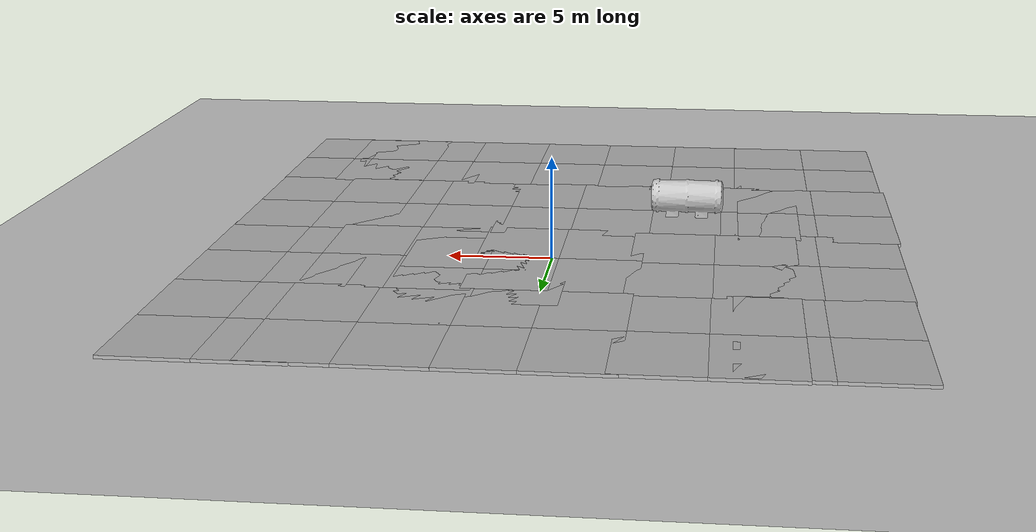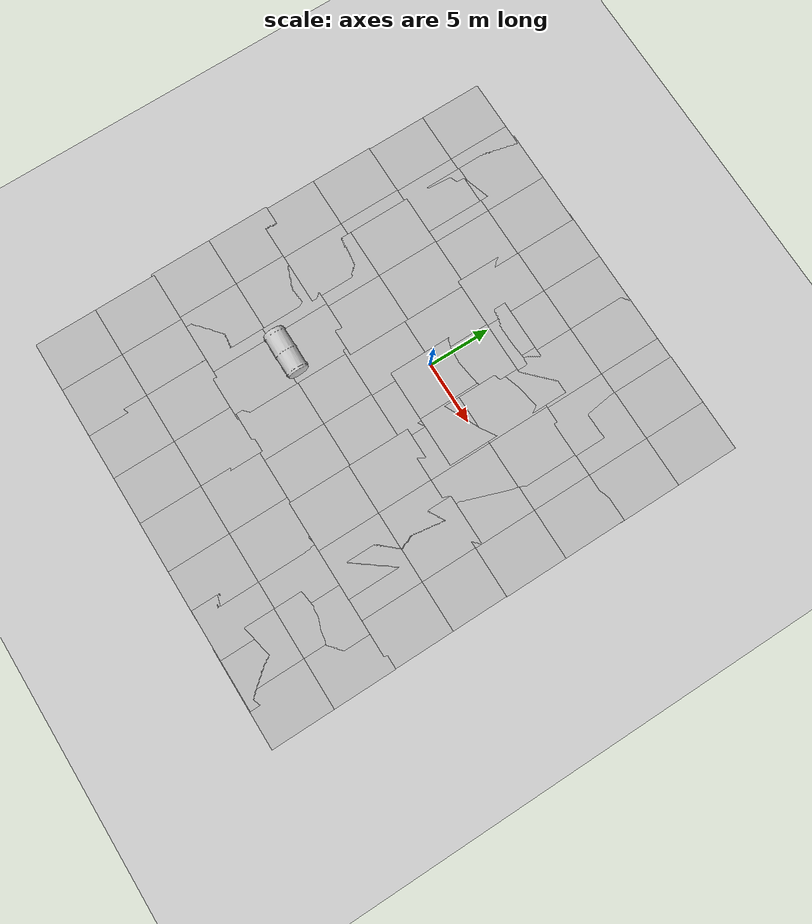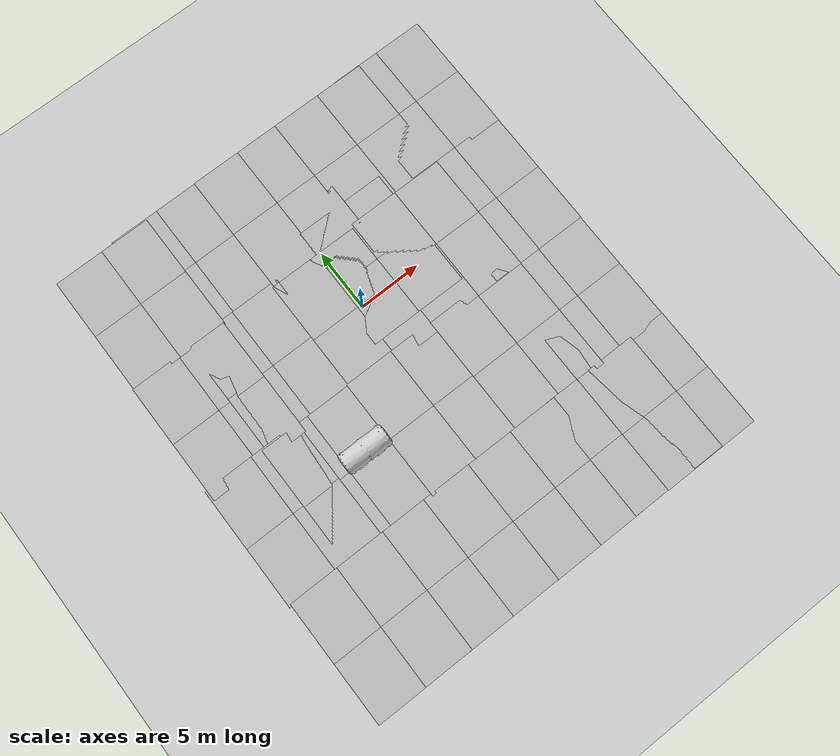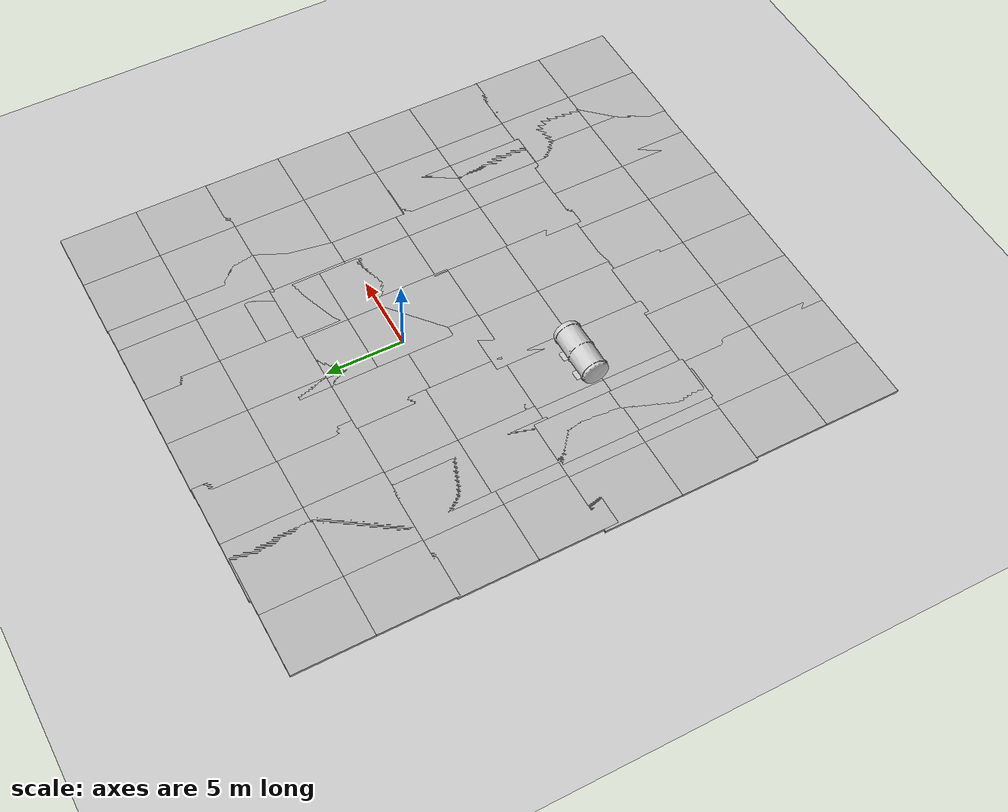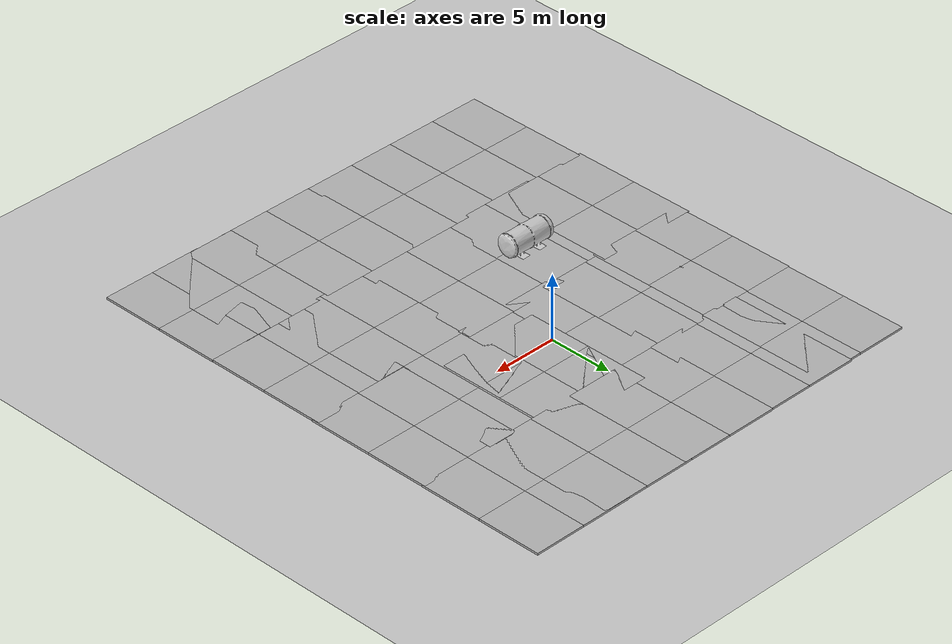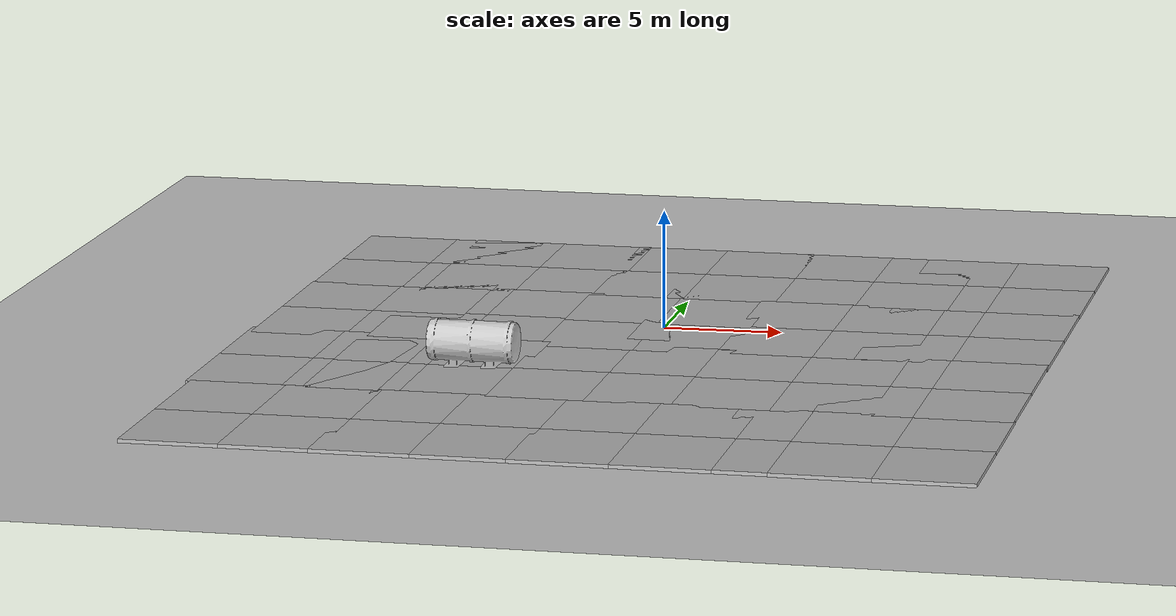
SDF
<sdf version="1.7">
 <world name="default">
  <light name="sun" type="directional">
   <pose>0 0 10 0 -0 0</pose>
   <diffuse>0.8 0.8 0.8 1</diffuse>
   <specular>0.2 0.2 0.2 1</specular>
   <attenuation>
    <range>1000</range>
    <constant>0.9</constant>
    <linear>0.01</linear>
    <quadratic>0.001</quadratic>
   </attenuation>
   <direction>-0.5 0.1 -0.9</direction>
   <spot><inner_angle>0</inner_angle><outer_angle>0</outer_angle><falloff>0</falloff></spot>
  </light>
  <model name="ground_plane">
   <static>1</static>
   <link name="link">
    <collision name="collision">
     <geometry><plane><normal>0 0 1</normal><size>100 100</size></plane></geometry>
     <surface>
      <contact><collide_bitmask>65535</collide_bitmask></contact>
      <friction><ode><mu>100</mu><mu2>50</mu2></ode></friction>
     </surface>
    </collision>
    <visual name="visual">
     <cast_shadows>0</cast_shadows>
     <geometry><plane><normal>0 0 1</normal><size>100 100</size></plane></geometry>
     <material>
      <script><uri>file://media/materials/scripts/gazebo.material</uri><name>Gazebo/Grey</name></script>
     </material>
    </visual>
   </link>
  </model>
  <gravity>0 0 -9.8</gravity>
  <magnetic_field>6e-06 2.3e-05 -4.2e-05</magnetic_field>
  <atmosphere type="adiabatic"/>
  <physics type="ode">
   <max_step_size>0.001</max_step_size>
   <real_time_factor>1</real_time_factor>
   <real_time_update_rate>1000</real_time_update_rate>
  </physics>
  <scene><ambient>0.4 0.4 0.4 1</ambient><background>0.7 0.7 0.7 1</background><shadows>1</shadows></scene>
  <spherical_coordinates>
   <surface_model>EARTH_WGS84</surface_model>
   <latitude_deg>0</latitude_deg>
   <longitude_deg>0</longitude_deg>
   <elevation>0</elevation>
   <heading_deg>0</heading_deg>
  </spherical_coordinates>
  <model name="mud_box_0_clone">
   <static>1</static>
   <link name="link">
    <collision name="collision"><geometry><box><size>8 10 0.2</size></box></geometry></collision>
    <visual name="visual_1">
     <pose>-2 2.5 0 0 -0 0</pose>
     <cast_shadows>0</cast_shadows>
     <geometry><box><size>4 5 0.2</size></box></geometry>
     <material>
      <script>
       <uri>model://mud_box/materials/scripts</uri>
       <uri>model://mud_box/materials/textures</uri>
       <name>vrc/mud</name>
      </script>
     </material>
    </visual>
    <visual name="visual_2">
     <pose>2 2.5 0 0 -0 0</pose>
     <cast_shadows>0</cast_shadows>
     <geometry><box><size>4 5 0.2</size></box></geometry>
     <material>
      <script>
       <uri>model://mud_box/materials/scripts</uri>
       <uri>model://mud_box/materials/textures</uri>
       <name>vrc/mud</name>
      </script>
     </material>
    </visual>
    <visual name="visual_3">
     <pose>2 -2.5 0 0 -0 0</pose>
     <cast_shadows>0</cast_shadows>
     <geometry><box><size>4 5 0.2</size></box></geometry>
     <material>
      <script>
       <uri>model://mud_box/materials/scripts</uri>
       <uri>model://mud_box/materials/textures</uri>
       <name>vrc/mud</name>
      </script>
     </material>
    </visual>
    <visual name="visual_4">
     <pose>-2 -2.5 0 0 -0 0</pose>
     <cast_shadows>0</cast_shadows>
     <geometry><box><size>4 5 0.2</size></box></geometry>
     <material>
      <script>
       <uri>model://mud_box/materials/scripts</uri>
       <uri>model://mud_box/materials/textures</uri>
       <name>vrc/mud</name>
      </script>
     </material>
    </visual>
   </link>
   <pose>7.23243 10.1706 0 0 -0 0</pose>
  </model>
  <model name="mud_box_0_clone_1">
   <static>1</static>
   <link name="link">
    <collision name="collision"><geometry><box><size>8 10 0.2</size></box></geometry></collision>
    <visual name="visual_1">
     <pose>-2 2.5 0 0 -0 0</pose>
     <cast_shadows>0</cast_shadows>
     <geometry><box><size>4 5 0.2</size></box></geometry>
     <material>
      <script>
       <uri>model://mud_box/materials/scripts</uri>
       <uri>model://mud_box/materials/textures</uri>
       <name>vrc/mud</name>
      </script>
     </material>
    </visual>
    <visual name="visual_2">
     <pose>2 2.5 0 0 -0 0</pose>
     <cast_shadows>0</cast_shadows>
     <geometry><box><size>4 5 0.2</size></box></geometry>
     <material>
      <script>
       <uri>model://mud_box/materials/scripts</uri>
       <uri>model://mud_box/materials/textures</uri>
       <name>vrc/mud</name>
      </script>
     </material>
    </visual>
    <visual name="visual_3">
     <pose>2 -2.5 0 0 -0 0</pose>
     <cast_shadows>0</cast_shadows>
     <geometry><box><size>4 5 0.2</size></box></geometry>
     <material>
      <script>
       <uri>model://mud_box/materials/scripts</uri>
       <uri>model://mud_box/materials/textures</uri>
       <name>vrc/mud</name>
      </script>
     </material>
    </visual>
    <visual name="visual_4">
     <pose>-2 -2.5 0 0 -0 0</pose>
     <cast_shadows>0</cast_shadows>
     <geometry><box><size>4 5 0.2</size></box></geometry>
     <material>
      <script>
       <uri>model://mud_box/materials/scripts</uri>
       <uri>model://mud_box/materials/textures</uri>
       <name>vrc/mud</name>
      </script>
     </material>
    </visual>
   </link>
   <pose>7.10984 -8.97879 0 0 -0 0</pose>
  </model>
  <model name="mud_box_0_clone_5">
   <static>1</static>
   <link name="link">
    <collision name="collision"><geometry><box><size>8 10 0.2</size></box></geometry></collision>
    <visual name="visual_1">
     <pose>-2 2.5 0 0 -0 0</pose>
     <cast_shadows>0</cast_shadows>
     <geometry><box><size>4 5 0.2</size></box></geometry>
     <material>
      <script>
       <uri>model://mud_box/materials/scripts</uri>
       <uri>model://mud_box/materials/textures</uri>
       <name>vrc/mud</name>
      </script>
     </material>
    </visual>
    <visual name="visual_2">
     <pose>2 2.5 0 0 -0 0</pose>
     <cast_shadows>0</cast_shadows>
     <geometry><box><size>4 5 0.2</size></box></geometry>
     <material>
      <script>
       <uri>model://mud_box/materials/scripts</uri>
       <uri>model://mud_box/materials/textures</uri>
       <name>vrc/mud</name>
      </script>
     </material>
    </visual>
    <visual name="visual_3">
     <pose>2 -2.5 0 0 -0 0</pose>
     <cast_shadows>0</cast_shadows>
     <geometry><box><size>4 5 0.2</size></box></geometry>
     <material>
      <script>
       <uri>model://mud_box/materials/scripts</uri>
       <uri>model://mud_box/materials/textures</uri>
       <name>vrc/mud</name>
      </script>
     </material>
    </visual>
    <visual name="visual_4">
     <pose>-2 -2.5 0 0 -0 0</pose>
     <cast_shadows>0</cast_shadows>
     <geometry><box><size>4 5 0.2</size></box></geometry>
     <material>
      <script>
       <uri>model://mud_box/materials/scripts</uri>
       <uri>model://mud_box/materials/textures</uri>
       <name>vrc/mud</name>
      </script>
     </material>
    </visual>
   </link>
   <pose>-7.69602 10.1213 0 0 -0 0</pose>
  </model>
  <model name="mud_box_0_clone_1_clone">
   <static>1</static>
   <link name="link">
    <collision name="collision"><geometry><box><size>8 10 0.2</size></box></geometry></collision>
    <visual name="visual_1">
     <pose>-2 2.5 0 0 -0 0</pose>
     <cast_shadows>0</cast_shadows>
     <geometry><box><size>4 5 0.2</size></box></geometry>
     <material>
      <script>
       <uri>model://mud_box/materials/scripts</uri>
       <uri>model://mud_box/materials/textures</uri>
       <name>vrc/mud</name>
      </script>
     </material>
    </visual>
    <visual name="visual_2">
     <pose>2 2.5 0 0 -0 0</pose>
     <cast_shadows>0</cast_shadows>
     <geometry><box><size>4 5 0.2</size></box></geometry>
     <material>
      <script>
       <uri>model://mud_box/materials/scripts</uri>
       <uri>model://mud_box/materials/textures</uri>
       <name>vrc/mud</name>
      </script>
     </material>
    </visual>
    <visual name="visual_3">
     <pose>2 -2.5 0 0 -0 0</pose>
     <cast_shadows>0</cast_shadows>
     <geometry><box><size>4 5 0.2</size></box></geometry>
     <material>
      <script>
       <uri>model://mud_box/materials/scripts</uri>
       <uri>model://mud_box/materials/textures</uri>
       <name>vrc/mud</name>
      </script>
     </material>
    </visual>
    <visual name="visual_4">
     <pose>-2 -2.5 0 0 -0 0</pose>
     <cast_shadows>0</cast_shadows>
     <geometry><box><size>4 5 0.2</size></box></geometry>
     <material>
      <script>
       <uri>model://mud_box/materials/scripts</uri>
       <uri>model://mud_box/materials/textures</uri>
       <name>vrc/mud</name>
      </script>
     </material>
    </visual>
   </link>
   <pose>-0.352292 0.173494 0 0 -0 0</pose>
  </model>
  <model name="mud_box_0_clone_1_clone_0_clone">
   <static>1</static>
   <link name="link">
    <collision name="collision"><geometry><box><size>8 10 0.2</size></box></geometry></collision>
    <visual name="visual_1">
     <pose>-2 2.5 0 0 -0 0</pose>
     <cast_shadows>0</cast_shadows>
     <geometry><box><size>4 5 0.2</size></box></geometry>
     <material>
      <script>
       <uri>model://mud_box/materials/scripts</uri>
       <uri>model://mud_box/materials/textures</uri>
       <name>vrc/mud</name>
      </script>
     </material>
    </visual>
    <visual name="visual_2">
     <pose>2 2.5 0 0 -0 0</pose>
     <cast_shadows>0</cast_shadows>
     <geometry><box><size>4 5 0.2</size></box></geometry>
     <material>
      <script>
       <uri>model://mud_box/materials/scripts</uri>
       <uri>model://mud_box/materials/textures</uri>
       <name>vrc/mud</name>
      </script>
     </material>
    </visual>
    <visual name="visual_3">
     <pose>2 -2.5 0 0 -0 0</pose>
     <cast_shadows>0</cast_shadows>
     <geometry><box><size>4 5 0.2</size></box></geometry>
     <material>
      <script>
       <uri>model://mud_box/materials/scripts</uri>
       <uri>model://mud_box/materials/textures</uri>
       <name>vrc/mud</name>
      </script>
     </material>
    </visual>
    <visual name="visual_4">
     <pose>-2 -2.5 0 0 -0 0</pose>
     <cast_shadows>0</cast_shadows>
     <geometry><box><size>4 5 0.2</size></box></geometry>
     <material>
      <script>
       <uri>model://mud_box/materials/scripts</uri>
       <uri>model://mud_box/materials/textures</uri>
       <name>vrc/mud</name>
      </script>
     </material>
    </visual>
   </link>
   <pose>7.13421 0.443991 0 0 -0 0</pose>
  </model>
  <model name="mud_box_0_clone_1_clone_1">
   <static>1</static>
   <link name="link">
    <collision name="collision"><geometry><box><size>8 10 0.2</size></box></geometry></collision>
    <visual name="visual_1">
     <pose>-2 2.5 0 0 -0 0</pose>
     <cast_shadows>0</cast_shadows>
     <geometry><box><size>4 5 0.2</size></box></geometry>
     <material>
      <script>
       <uri>model://mud_box/materials/scripts</uri>
       <uri>model://mud_box/materials/textures</uri>
       <name>vrc/mud</name>
      </script>
     </material>
    </visual>
    <visual name="visual_2">
     <pose>2 2.5 0 0 -0 0</pose>
     <cast_shadows>0</cast_shadows>
     <geometry><box><size>4 5 0.2</size></box></geometry>
     <material>
      <script>
       <uri>model://mud_box/materials/scripts</uri>
       <uri>model://mud_box/materials/textures</uri>
       <name>vrc/mud</name>
      </script>
     </material>
    </visual>
    <visual name="visual_3">
     <pose>2 -2.5 0 0 -0 0</pose>
     <cast_shadows>0</cast_shadows>
     <geometry><box><size>4 5 0.2</size></box></geometry>
     <material>
      <script>
       <uri>model://mud_box/materials/scripts</uri>
       <uri>model://mud_box/materials/textures</uri>
       <name>vrc/mud</name>
      </script>
     </material>
    </visual>
    <visual name="visual_4">
     <pose>-2 -2.5 0 0 -0 0</pose>
     <cast_shadows>0</cast_shadows>
     <geometry><box><size>4 5 0.2</size></box></geometry>
     <material>
      <script>
       <uri>model://mud_box/materials/scripts</uri>
       <uri>model://mud_box/materials/textures</uri>
       <name>vrc/mud</name>
      </script>
     </material>
    </visual>
   </link>
   <pose>-0.447098 -8.882 0 0 -0 0</pose>
  </model>
  <model name="mud_box_0_clone_1_clone_2">
   <static>1</static>
   <link name="link">
    <collision name="collision"><geometry><box><size>8 10 0.2</size></box></geometry></collision>
    <visual name="visual_1">
     <pose>-2 2.5 0 0 -0 0</pose>
     <cast_shadows>0</cast_shadows>
     <geometry><box><size>4 5 0.2</size></box></geometry>
     <material>
      <script>
       <uri>model://mud_box/materials/scripts</uri>
       <uri>model://mud_box/materials/textures</uri>
       <name>vrc/mud</name>
      </script>
     </material>
    </visual>
    <visual name="visual_2">
     <pose>2 2.5 0 0 -0 0</pose>
     <cast_shadows>0</cast_shadows>
     <geometry><box><size>4 5 0.2</size></box></geometry>
     <material>
      <script>
       <uri>model://mud_box/materials/scripts</uri>
       <uri>model://mud_box/materials/textures</uri>
       <name>vrc/mud</name>
      </script>
     </material>
    </visual>
    <visual name="visual_3">
     <pose>2 -2.5 0 0 -0 0</pose>
     <cast_shadows>0</cast_shadows>
     <geometry><box><size>4 5 0.2</size></box></geometry>
     <material>
      <script>
       <uri>model://mud_box/materials/scripts</uri>
       <uri>model://mud_box/materials/textures</uri>
       <name>vrc/mud</name>
      </script>
     </material>
    </visual>
    <visual name="visual_4">
     <pose>-2 -2.5 0 0 -0 0</pose>
     <cast_shadows>0</cast_shadows>
     <geometry><box><size>4 5 0.2</size></box></geometry>
     <material>
      <script>
       <uri>model://mud_box/materials/scripts</uri>
       <uri>model://mud_box/materials/textures</uri>
       <name>vrc/mud</name>
      </script>
     </material>
    </visual>
   </link>
   <pose>-8.01153 -8.98007 0 0 -0 0</pose>
  </model>
  <model name="mud_box_0_clone_5_clone">
   <static>1</static>
   <link name="link">
    <collision name="collision"><geometry><box><size>8 10 0.2</size></box></geometry></collision>
    <visual name="visual_1">
     <pose>-2 2.5 0 0 -0 0</pose>
     <cast_shadows>0</cast_shadows>
     <geometry><box><size>4 5 0.2</size></box></geometry>
     <material>
      <script>
       <uri>model://mud_box/materials/scripts</uri>
       <uri>model://mud_box/materials/textures</uri>
       <name>vrc/mud</name>
      </script>
     </material>
    </visual>
    <visual name="visual_2">
     <pose>2 2.5 0 0 -0 0</pose>
     <cast_shadows>0</cast_shadows>
     <geometry><box><size>4 5 0.2</size></box></geometry>
     <material>
      <script>
       <uri>model://mud_box/materials/scripts</uri>
       <uri>model://mud_box/materials/textures</uri>
       <name>vrc/mud</name>
      </script>
     </material>
    </visual>
    <visual name="visual_3">
     <pose>2 -2.5 0 0 -0 0</pose>
     <cast_shadows>0</cast_shadows>
     <geometry><box><size>4 5 0.2</size></box></geometry>
     <material>
      <script>
       <uri>model://mud_box/materials/scripts</uri>
       <uri>model://mud_box/materials/textures</uri>
       <name>vrc/mud</name>
      </script>
     </material>
    </visual>
    <visual name="visual_4">
     <pose>-2 -2.5 0 0 -0 0</pose>
     <cast_shadows>0</cast_shadows>
     <geometry><box><size>4 5 0.2</size></box></geometry>
     <material>
      <script>
       <uri>model://mud_box/materials/scripts</uri>
       <uri>model://mud_box/materials/textures</uri>
       <name>vrc/mud</name>
      </script>
     </material>
    </visual>
   </link>
   <pose>-0.238477 10.1628 0 0 -0 0</pose>
  </model>
  <model name="mud_box_0_clone_5_clone_0">
   <static>1</static>
   <link name="link">
    <collision name="collision"><geometry><box><size>8 10 0.2</size></box></geometry></collision>
    <visual name="visual_1">
     <pose>-2 2.5 0 0 -0 0</pose>
     <cast_shadows>0</cast_shadows>
     <geometry><box><size>4 5 0.2</size></box></geometry>
     <material>
      <script>
       <uri>model://mud_box/materials/scripts</uri>
       <uri>model://mud_box/materials/textures</uri>
       <name>vrc/mud</name>
      </script>
     </material>
    </visual>
    <visual name="visual_2">
     <pose>2 2.5 0 0 -0 0</pose>
     <cast_shadows>0</cast_shadows>
     <geometry><box><size>4 5 0.2</size></box></geometry>
     <material>
      <script>
       <uri>model://mud_box/materials/scripts</uri>
       <uri>model://mud_box/materials/textures</uri>
       <name>vrc/mud</name>
      </script>
     </material>
    </visual>
    <visual name="visual_3">
     <pose>2 -2.5 0 0 -0 0</pose>
     <cast_shadows>0</cast_shadows>
     <geometry><box><size>4 5 0.2</size></box></geometry>
     <material>
      <script>
       <uri>model://mud_box/materials/scripts</uri>
       <uri>model://mud_box/materials/textures</uri>
       <name>vrc/mud</name>
      </script>
     </material>
    </visual>
    <visual name="visual_4">
     <pose>-2 -2.5 0 0 -0 0</pose>
     <cast_shadows>0</cast_shadows>
     <geometry><box><size>4 5 0.2</size></box></geometry>
     <material>
      <script>
       <uri>model://mud_box/materials/scripts</uri>
       <uri>model://mud_box/materials/textures</uri>
       <name>vrc/mud</name>
      </script>
     </material>
    </visual>
   </link>
   <pose>-7.75937 0.459731 0 0 -0 0</pose>
  </model>
  <model name="mud_box_0_clone_5_clone_1">
   <static>1</static>
   <link name="link">
    <collision name="collision"><geometry><box><size>8 10 0.2</size></box></geometry></collision>
    <visual name="visual_1">
     <pose>-2 2.5 0 0 -0 0</pose>
     <cast_shadows>0</cast_shadows>
     <geometry><box><size>4 5 0.2</size></box></geometry>
     <material>
      <script>
       <uri>model://mud_box/materials/scripts</uri>
       <uri>model://mud_box/materials/textures</uri>
       <name>vrc/mud</name>
      </script>
     </material>
    </visual>
    <visual name="visual_2">
     <pose>2 2.5 0 0 -0 0</pose>
     <cast_shadows>0</cast_shadows>
     <geometry><box><size>4 5 0.2</size></box></geometry>
     <material>
      <script>
       <uri>model://mud_box/materials/scripts</uri>
       <uri>model://mud_box/materials/textures</uri>
       <name>vrc/mud</name>
      </script>
     </material>
    </visual>
    <visual name="visual_3">
     <pose>2 -2.5 0 0 -0 0</pose>
     <cast_shadows>0</cast_shadows>
     <geometry><box><size>4 5 0.2</size></box></geometry>
     <material>
      <script>
       <uri>model://mud_box/materials/scripts</uri>
       <uri>model://mud_box/materials/textures</uri>
       <name>vrc/mud</name>
      </script>
     </material>
    </visual>
    <visual name="visual_4">
     <pose>-2 -2.5 0 0 -0 0</pose>
     <cast_shadows>0</cast_shadows>
     <geometry><box><size>4 5 0.2</size></box></geometry>
     <material>
      <script>
       <uri>model://mud_box/materials/scripts</uri>
       <uri>model://mud_box/materials/textures</uri>
       <name>vrc/mud</name>
      </script>
     </material>
    </visual>
   </link>
   <pose>2.9865 2.19101 0 0 -0 0</pose>
  </model>
  <model name="mud_box_0_clone_1_clone_2_clone">
   <static>1</static>
   <link name="link">
    <collision name="collision"><geometry><box><size>8 10 0.2</size></box></geometry></collision>
    <visual name="visual_1">
     <pose>-2 2.5 0 0 -0 0</pose>
     <cast_shadows>0</cast_shadows>
     <geometry><box><size>4 5 0.2</size></box></geometry>
     <material>
      <script>
       <uri>model://mud_box/materials/scripts</uri>
       <uri>model://mud_box/materials/textures</uri>
       <name>vrc/mud</name>
      </script>
     </material>
    </visual>
    <visual name="visual_2">
     <pose>2 2.5 0 0 -0 0</pose>
     <cast_shadows>0</cast_shadows>
     <geometry><box><size>4 5 0.2</size></box></geometry>
     <material>
      <script>
       <uri>model://mud_box/materials/scripts</uri>
       <uri>model://mud_box/materials/textures</uri>
       <name>vrc/mud</name>
      </script>
     </material>
    </visual>
    <visual name="visual_3">
     <pose>2 -2.5 0 0 -0 0</pose>
     <cast_shadows>0</cast_shadows>
     <geometry><box><size>4 5 0.2</size></box></geometry>
     <material>
      <script>
       <uri>model://mud_box/materials/scripts</uri>
       <uri>model://mud_box/materials/textures</uri>
       <name>vrc/mud</name>
      </script>
     </material>
    </visual>
    <visual name="visual_4">
     <pose>-2 -2.5 0 0 -0 0</pose>
     <cast_shadows>0</cast_shadows>
     <geometry><box><size>4 5 0.2</size></box></geometry>
     <material>
      <script>
       <uri>model://mud_box/materials/scripts</uri>
       <uri>model://mud_box/materials/textures</uri>
       <name>vrc/mud</name>
      </script>
     </material>
    </visual>
   </link>
   <pose>-12.6583 10.0258 0 0 -0 0</pose>
  </model>
  <model name="mud_box_0_clone_1_clone_2_clone_0">
   <static>1</static>
   <link name="link">
    <collision name="collision"><geometry><box><size>8 10 0.2</size></box></geometry></collision>
    <visual name="visual_1">
     <pose>-2 2.5 0 0 -0 0</pose>
     <cast_shadows>0</cast_shadows>
     <geometry><box><size>4 5 0.2</size></box></geometry>
     <material>
      <script>
       <uri>model://mud_box/materials/scripts</uri>
       <uri>model://mud_box/materials/textures</uri>
       <name>vrc/mud</name>
      </script>
     </material>
    </visual>
    <visual name="visual_2">
     <pose>2 2.5 0 0 -0 0</pose>
     <cast_shadows>0</cast_shadows>
     <geometry><box><size>4 5 0.2</size></box></geometry>
     <material>
      <script>
       <uri>model://mud_box/materials/scripts</uri>
       <uri>model://mud_box/materials/textures</uri>
       <name>vrc/mud</name>
      </script>
     </material>
    </visual>
    <visual name="visual_3">
     <pose>2 -2.5 0 0 -0 0</pose>
     <cast_shadows>0</cast_shadows>
     <geometry><box><size>4 5 0.2</size></box></geometry>
     <material>
      <script>
       <uri>model://mud_box/materials/scripts</uri>
       <uri>model://mud_box/materials/textures</uri>
       <name>vrc/mud</name>
      </script>
     </material>
    </visual>
    <visual name="visual_4">
     <pose>-2 -2.5 0 0 -0 0</pose>
     <cast_shadows>0</cast_shadows>
     <geometry><box><size>4 5 0.2</size></box></geometry>
     <material>
      <script>
       <uri>model://mud_box/materials/scripts</uri>
       <uri>model://mud_box/materials/textures</uri>
       <name>vrc/mud</name>
      </script>
     </material>
    </visual>
   </link>
   <pose>-12.7278 0.220022 0 0 -0 0</pose>
  </model>
  <model name="mud_box_0_clone_1_clone_2_clone_1">
   <static>1</static>
   <link name="link">
    <collision name="collision"><geometry><box><size>8 10 0.2</size></box></geometry></collision>
    <visual name="visual_1">
     <pose>-2 2.5 0 0 -0 0</pose>
     <cast_shadows>0</cast_shadows>
     <geometry><box><size>4 5 0.2</size></box></geometry>
     <material>
      <script>
       <uri>model://mud_box/materials/scripts</uri>
       <uri>model://mud_box/materials/textures</uri>
       <name>vrc/mud</name>
      </script>
     </material>
    </visual>
    <visual name="visual_2">
     <pose>2 2.5 0 0 -0 0</pose>
     <cast_shadows>0</cast_shadows>
     <geometry><box><size>4 5 0.2</size></box></geometry>
     <material>
      <script>
       <uri>model://mud_box/materials/scripts</uri>
       <uri>model://mud_box/materials/textures</uri>
       <name>vrc/mud</name>
      </script>
     </material>
    </visual>
    <visual name="visual_3">
     <pose>2 -2.5 0 0 -0 0</pose>
     <cast_shadows>0</cast_shadows>
     <geometry><box><size>4 5 0.2</size></box></geometry>
     <material>
      <script>
       <uri>model://mud_box/materials/scripts</uri>
       <uri>model://mud_box/materials/textures</uri>
       <name>vrc/mud</name>
      </script>
     </material>
    </visual>
    <visual name="visual_4">
     <pose>-2 -2.5 0 0 -0 0</pose>
     <cast_shadows>0</cast_shadows>
     <geometry><box><size>4 5 0.2</size></box></geometry>
     <material>
      <script>
       <uri>model://mud_box/materials/scripts</uri>
       <uri>model://mud_box/materials/textures</uri>
       <name>vrc/mud</name>
      </script>
     </material>
    </visual>
   </link>
   <pose>-12.8843 -8.84727 0 0 -0 0</pose>
  </model>
  <model name="mud_box_0_clone_1_clone_2_clone_2">
   <static>1</static>
   <link name="link">
    <collision name="collision"><geometry><box><size>8 10 0.2</size></box></geometry></collision>
    <visual name="visual_1">
     <pose>-2 2.5 0 0 -0 0</pose>
     <cast_shadows>0</cast_shadows>
     <geometry><box><size>4 5 0.2</size></box></geometry>
     <material>
      <script>
       <uri>model://mud_box/materials/scripts</uri>
       <uri>model://mud_box/materials/textures</uri>
       <name>vrc/mud</name>
      </script>
     </material>
    </visual>
    <visual name="visual_2">
     <pose>2 2.5 0 0 -0 0</pose>
     <cast_shadows>0</cast_shadows>
     <geometry><box><size>4 5 0.2</size></box></geometry>
     <material>
      <script>
       <uri>model://mud_box/materials/scripts</uri>
       <uri>model://mud_box/materials/textures</uri>
       <name>vrc/mud</name>
      </script>
     </material>
    </visual>
    <visual name="visual_3">
     <pose>2 -2.5 0 0 -0 0</pose>
     <cast_shadows>0</cast_shadows>
     <geometry><box><size>4 5 0.2</size></box></geometry>
     <material>
      <script>
       <uri>model://mud_box/materials/scripts</uri>
       <uri>model://mud_box/materials/textures</uri>
       <name>vrc/mud</name>
      </script>
     </material>
    </visual>
    <visual name="visual_4">
     <pose>-2 -2.5 0 0 -0 0</pose>
     <cast_shadows>0</cast_shadows>
     <geometry><box><size>4 5 0.2</size></box></geometry>
     <material>
      <script>
       <uri>model://mud_box/materials/scripts</uri>
       <uri>model://mud_box/materials/textures</uri>
       <name>vrc/mud</name>
      </script>
     </material>
    </visual>
   </link>
   <pose>12.8873 10.2037 0 0 -0 0</pose>
  </model>
  <model name="mud_box_0_clone_1_clone_2_clone_3">
   <static>1</static>
   <link name="link">
    <collision name="collision"><geometry><box><size>8 10 0.2</size></box></geometry></collision>
    <visual name="visual_1">
     <pose>-2 2.5 0 0 -0 0</pose>
     <cast_shadows>0</cast_shadows>
     <geometry><box><size>4 5 0.2</size></box></geometry>
     <material>
      <script>
       <uri>model://mud_box/materials/scripts</uri>
       <uri>model://mud_box/materials/textures</uri>
       <name>vrc/mud</name>
      </script>
     </material>
    </visual>
    <visual name="visual_2">
     <pose>2 2.5 0 0 -0 0</pose>
     <cast_shadows>0</cast_shadows>
     <geometry><box><size>4 5 0.2</size></box></geometry>
     <material>
      <script>
       <uri>model://mud_box/materials/scripts</uri>
       <uri>model://mud_box/materials/textures</uri>
       <name>vrc/mud</name>
      </script>
     </material>
    </visual>
    <visual name="visual_3">
     <pose>2 -2.5 0 0 -0 0</pose>
     <cast_shadows>0</cast_shadows>
     <geometry><box><size>4 5 0.2</size></box></geometry>
     <material>
      <script>
       <uri>model://mud_box/materials/scripts</uri>
       <uri>model://mud_box/materials/textures</uri>
       <name>vrc/mud</name>
      </script>
     </material>
    </visual>
    <visual name="visual_4">
     <pose>-2 -2.5 0 0 -0 0</pose>
     <cast_shadows>0</cast_shadows>
     <geometry><box><size>4 5 0.2</size></box></geometry>
     <material>
      <script>
       <uri>model://mud_box/materials/scripts</uri>
       <uri>model://mud_box/materials/textures</uri>
       <name>vrc/mud</name>
      </script>
     </material>
    </visual>
   </link>
   <pose>12.867 0.490586 0 0 -0 0</pose>
  </model>
  <model name="mud_box_0_clone_1_clone_2_clone_4">
   <static>1</static>
   <link name="link">
    <collision name="collision"><geometry><box><size>8 10 0.2</size></box></geometry></collision>
    <visual name="visual_1">
     <pose>-2 2.5 0 0 -0 0</pose>
     <cast_shadows>0</cast_shadows>
     <geometry><box><size>4 5 0.2</size></box></geometry>
     <material>
      <script>
       <uri>model://mud_box/materials/scripts</uri>
       <uri>model://mud_box/materials/textures</uri>
       <name>vrc/mud</name>
      </script>
     </material>
    </visual>
    <visual name="visual_2">
     <pose>2 2.5 0 0 -0 0</pose>
     <cast_shadows>0</cast_shadows>
     <geometry><box><size>4 5 0.2</size></box></geometry>
     <material>
      <script>
       <uri>model://mud_box/materials/scripts</uri>
       <uri>model://mud_box/materials/textures</uri>
       <name>vrc/mud</name>
      </script>
     </material>
    </visual>
    <visual name="visual_3">
     <pose>2 -2.5 0 0 -0 0</pose>
     <cast_shadows>0</cast_shadows>
     <geometry><box><size>4 5 0.2</size></box></geometry>
     <material>
      <script>
       <uri>model://mud_box/materials/scripts</uri>
       <uri>model://mud_box/materials/textures</uri>
       <name>vrc/mud</name>
      </script>
     </material>
    </visual>
    <visual name="visual_4">
     <pose>-2 -2.5 0 0 -0 0</pose>
     <cast_shadows>0</cast_shadows>
     <geometry><box><size>4 5 0.2</size></box></geometry>
     <material>
      <script>
       <uri>model://mud_box/materials/scripts</uri>
       <uri>model://mud_box/materials/textures</uri>
       <name>vrc/mud</name>
      </script>
     </material>
    </visual>
   </link>
   <pose>12.8269 -8.96328 0 0 -0 0</pose>
  </model>
  <model name="mud_box_0_clone_1_clone_2_clone_5">
   <static>1</static>
   <link name="link">
    <collision name="collision"><geometry><box><size>8 10 0.2</size></box></geometry></collision>
    <visual name="visual_1">
     <pose>-2 2.5 0 0 -0 0</pose>
     <cast_shadows>0</cast_shadows>
     <geometry><box><size>4 5 0.2</size></box></geometry>
     <material>
      <script>
       <uri>model://mud_box/materials/scripts</uri>
       <uri>model://mud_box/materials/textures</uri>
       <name>vrc/mud</name>
      </script>
     </material>
    </visual>
    <visual name="visual_2">
     <pose>2 2.5 0 0 -0 0</pose>
     <cast_shadows>0</cast_shadows>
     <geometry><box><size>4 5 0.2</size></box></geometry>
     <material>
      <script>
       <uri>model://mud_box/materials/scripts</uri>
       <uri>model://mud_box/materials/textures</uri>
       <name>vrc/mud</name>
      </script>
     </material>
    </visual>
    <visual name="visual_3">
     <pose>2 -2.5 0 0 -0 0</pose>
     <cast_shadows>0</cast_shadows>
     <geometry><box><size>4 5 0.2</size></box></geometry>
     <material>
      <script>
       <uri>model://mud_box/materials/scripts</uri>
       <uri>model://mud_box/materials/textures</uri>
       <name>vrc/mud</name>
      </script>
     </material>
    </visual>
    <visual name="visual_4">
     <pose>-2 -2.5 0 0 -0 0</pose>
     <cast_shadows>0</cast_shadows>
     <geometry><box><size>4 5 0.2</size></box></geometry>
     <material>
      <script>
       <uri>model://mud_box/materials/scripts</uri>
       <uri>model://mud_box/materials/textures</uri>
       <name>vrc/mud</name>
      </script>
     </material>
    </visual>
   </link>
   <pose>-12.7124 -18.6596 0 0 -0 0</pose>
  </model>
  <model name="mud_box_0_clone_1_clone_2_clone_6">
   <static>1</static>
   <link name="link">
    <collision name="collision"><geometry><box><size>8 10 0.2</size></box></geometry></collision>
    <visual name="visual_1">
     <pose>-2 2.5 0 0 -0 0</pose>
     <cast_shadows>0</cast_shadows>
     <geometry><box><size>4 5 0.2</size></box></geometry>
     <material>
      <script>
       <uri>model://mud_box/materials/scripts</uri>
       <uri>model://mud_box/materials/textures</uri>
       <name>vrc/mud</name>
      </script>
     </material>
    </visual>
    <visual name="visual_2">
     <pose>2 2.5 0 0 -0 0</pose>
     <cast_shadows>0</cast_shadows>
     <geometry><box><size>4 5 0.2</size></box></geometry>
     <material>
      <script>
       <uri>model://mud_box/materials/scripts</uri>
       <uri>model://mud_box/materials/textures</uri>
       <name>vrc/mud</name>
      </script>
     </material>
    </visual>
    <visual name="visual_3">
     <pose>2 -2.5 0 0 -0 0</pose>
     <cast_shadows>0</cast_shadows>
     <geometry><box><size>4 5 0.2</size></box></geometry>
     <material>
      <script>
       <uri>model://mud_box/materials/scripts</uri>
       <uri>model://mud_box/materials/textures</uri>
       <name>vrc/mud</name>
      </script>
     </material>
    </visual>
    <visual name="visual_4">
     <pose>-2 -2.5 0 0 -0 0</pose>
     <cast_shadows>0</cast_shadows>
     <geometry><box><size>4 5 0.2</size></box></geometry>
     <material>
      <script>
       <uri>model://mud_box/materials/scripts</uri>
       <uri>model://mud_box/materials/textures</uri>
       <name>vrc/mud</name>
      </script>
     </material>
    </visual>
   </link>
   <pose>-5.10135 -18.6672 0 0 -0 0</pose>
  </model>
  <model name="mud_box_0_clone_1_clone_2_clone_7">
   <static>1</static>
   <link name="link">
    <collision name="collision"><geometry><box><size>8 10 0.2</size></box></geometry></collision>
    <visual name="visual_1">
     <pose>-2 2.5 0 0 -0 0</pose>
     <cast_shadows>0</cast_shadows>
     <geometry><box><size>4 5 0.2</size></box></geometry>
     <material>
      <script>
       <uri>model://mud_box/materials/scripts</uri>
       <uri>model://mud_box/materials/textures</uri>
       <name>vrc/mud</name>
      </script>
     </material>
    </visual>
    <visual name="visual_2">
     <pose>2 2.5 0 0 -0 0</pose>
     <cast_shadows>0</cast_shadows>
     <geometry><box><size>4 5 0.2</size></box></geometry>
     <material>
      <script>
       <uri>model://mud_box/materials/scripts</uri>
       <uri>model://mud_box/materials/textures</uri>
       <name>vrc/mud</name>
      </script>
     </material>
    </visual>
    <visual name="visual_3">
     <pose>2 -2.5 0 0 -0 0</pose>
     <cast_shadows>0</cast_shadows>
     <geometry><box><size>4 5 0.2</size></box></geometry>
     <material>
      <script>
       <uri>model://mud_box/materials/scripts</uri>
       <uri>model://mud_box/materials/textures</uri>
       <name>vrc/mud</name>
      </script>
     </material>
    </visual>
    <visual name="visual_4">
     <pose>-2 -2.5 0 0 -0 0</pose>
     <cast_shadows>0</cast_shadows>
     <geometry><box><size>4 5 0.2</size></box></geometry>
     <material>
      <script>
       <uri>model://mud_box/materials/scripts</uri>
       <uri>model://mud_box/materials/textures</uri>
       <name>vrc/mud</name>
      </script>
     </material>
    </visual>
   </link>
   <pose>2.7 -18.6825 0 0 -0 0</pose>
  </model>
  <model name="mud_box_0_clone_1_clone_2_clone_8">
   <static>1</static>
   <link name="link">
    <collision name="collision"><geometry><box><size>8 10 0.2</size></box></geometry></collision>
    <visual name="visual_1">
     <pose>-2 2.5 0 0 -0 0</pose>
     <cast_shadows>0</cast_shadows>
     <geometry><box><size>4 5 0.2</size></box></geometry>
     <material>
      <script>
       <uri>model://mud_box/materials/scripts</uri>
       <uri>model://mud_box/materials/textures</uri>
       <name>vrc/mud</name>
      </script>
     </material>
    </visual>
    <visual name="visual_2">
     <pose>2 2.5 0 0 -0 0</pose>
     <cast_shadows>0</cast_shadows>
     <geometry><box><size>4 5 0.2</size></box></geometry>
     <material>
      <script>
       <uri>model://mud_box/materials/scripts</uri>
       <uri>model://mud_box/materials/textures</uri>
       <name>vrc/mud</name>
      </script>
     </material>
    </visual>
    <visual name="visual_3">
     <pose>2 -2.5 0 0 -0 0</pose>
     <cast_shadows>0</cast_shadows>
     <geometry><box><size>4 5 0.2</size></box></geometry>
     <material>
      <script>
       <uri>model://mud_box/materials/scripts</uri>
       <uri>model://mud_box/materials/textures</uri>
       <name>vrc/mud</name>
      </script>
     </material>
    </visual>
    <visual name="visual_4">
     <pose>-2 -2.5 0 0 -0 0</pose>
     <cast_shadows>0</cast_shadows>
     <geometry><box><size>4 5 0.2</size></box></geometry>
     <material>
      <script>
       <uri>model://mud_box/materials/scripts</uri>
       <uri>model://mud_box/materials/textures</uri>
       <name>vrc/mud</name>
      </script>
     </material>
    </visual>
   </link>
   <pose>9.89993 -18.6677 0 0 -0 0</pose>
  </model>
  <model name="mud_box_0_clone_1_clone_2_clone_9">
   <static>1</static>
   <link name="link">
    <collision name="collision"><geometry><box><size>8 10 0.2</size></box></geometry></collision>
    <visual name="visual_1">
     <pose>-2 2.5 0 0 -0 0</pose>
     <cast_shadows>0</cast_shadows>
     <geometry><box><size>4 5 0.2</size></box></geometry>
     <material>
      <script>
       <uri>model://mud_box/materials/scripts</uri>
       <uri>model://mud_box/materials/textures</uri>
       <name>vrc/mud</name>
      </script>
     </material>
    </visual>
    <visual name="visual_2">
     <pose>2 2.5 0 0 -0 0</pose>
     <cast_shadows>0</cast_shadows>
     <geometry><box><size>4 5 0.2</size></box></geometry>
     <material>
      <script>
       <uri>model://mud_box/materials/scripts</uri>
       <uri>model://mud_box/materials/textures</uri>
       <name>vrc/mud</name>
      </script>
     </material>
    </visual>
    <visual name="visual_3">
     <pose>2 -2.5 0 0 -0 0</pose>
     <cast_shadows>0</cast_shadows>
     <geometry><box><size>4 5 0.2</size></box></geometry>
     <material>
      <script>
       <uri>model://mud_box/materials/scripts</uri>
       <uri>model://mud_box/materials/textures</uri>
       <name>vrc/mud</name>
      </script>
     </material>
    </visual>
    <visual name="visual_4">
     <pose>-2 -2.5 0 0 -0 0</pose>
     <cast_shadows>0</cast_shadows>
     <geometry><box><size>4 5 0.2</size></box></geometry>
     <material>
      <script>
       <uri>model://mud_box/materials/scripts</uri>
       <uri>model://mud_box/materials/textures</uri>
       <name>vrc/mud</name>
      </script>
     </material>
    </visual>
   </link>
   <pose>12.8501 -18.7043 0 0 -0 0</pose>
  </model>
  <model name="water_tank">
   <static>1</static>
   <link name="link">
    <collision name="collision">
     <pose>0 0 1.05 0 -0 0</pose>
     <geometry><mesh><uri>model://water_tank/meshes/water_tank.dae</uri></mesh></geometry>
    </collision>
    <visual name="visual">
     <pose>0 0 1.05 0 -0 0</pose>
     <geometry><mesh><uri>model://water_tank/meshes/water_tank.dae</uri></mesh></geometry>
    </visual>
   </link>
   <pose>-6.2268 -8.46965 0 0 -0 0</pose>
  </model>
 </world>
</sdf>
